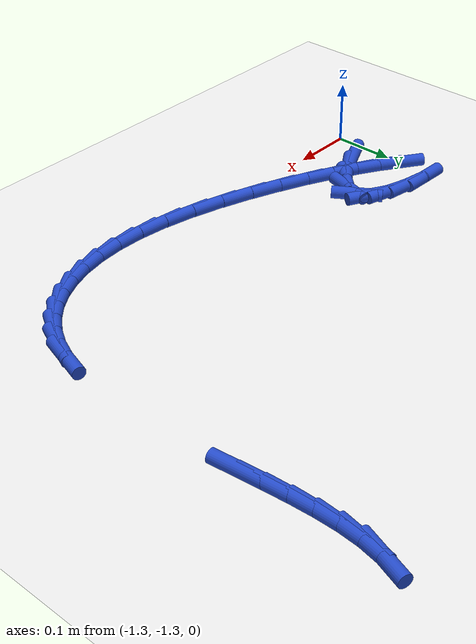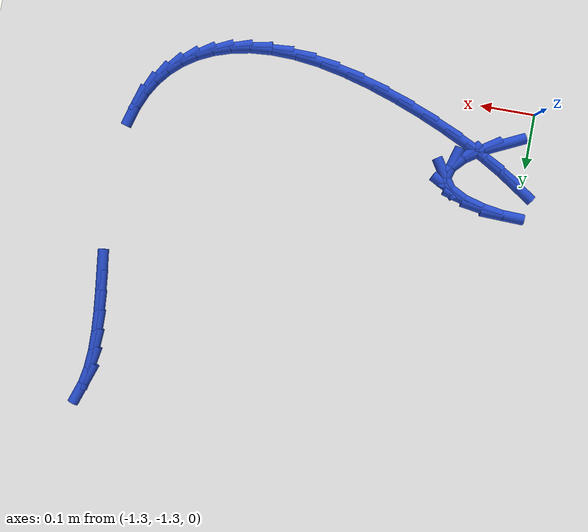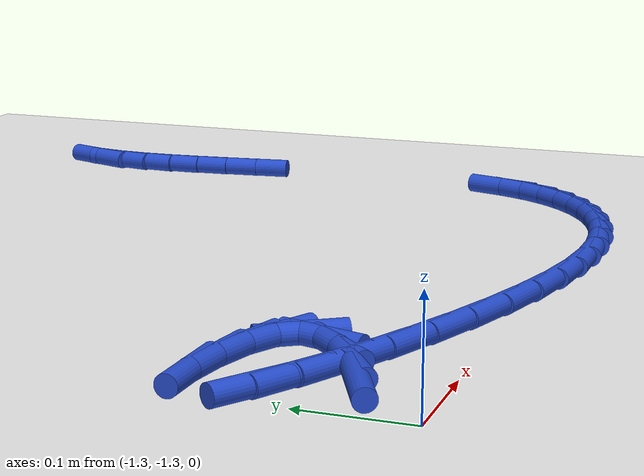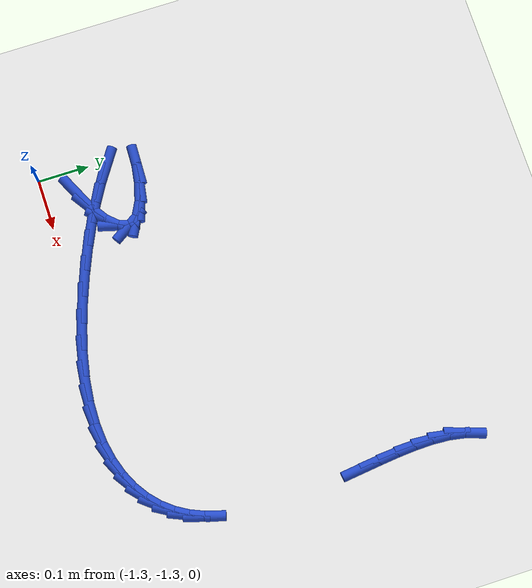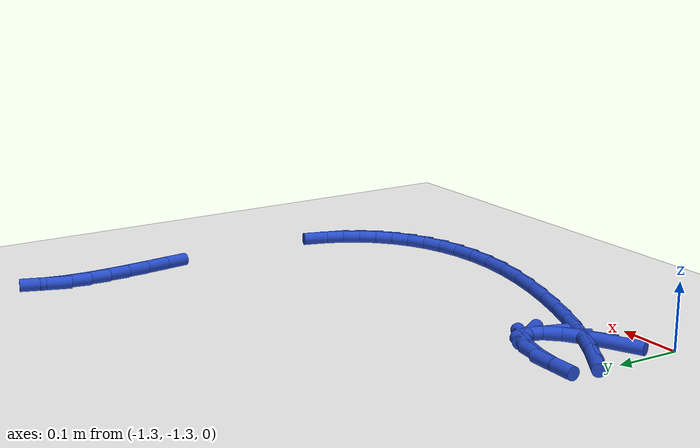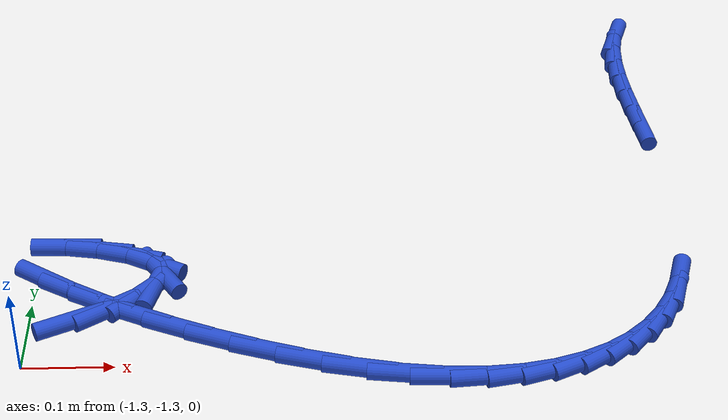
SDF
<sdf version="1.6">
 <world name="default">
  <model name="ground_plane">
   <static>1</static>
   <link name="link">
    <collision name="collision">
     <geometry><plane><normal>0 0 1</normal><size>100 100</size></plane></geometry>
     <surface><friction><ode><mu>100</mu><mu2>50</mu2></ode></friction></surface>
    </collision>
    <visual name="visual">
     <cast_shadows>0</cast_shadows>
     <geometry><plane><normal>0 0 1</normal><size>100 100</size></plane></geometry>
     <material>
      <script><uri>file://media/materials/scripts/gazebo.material</uri><name>Gazebo/WhiteGlow</name></script>
     </material>
    </visual>
   </link>
  </model>
  <model name="line">
   <link name="link_210">
    <pose>-1.2539724331653106 -1.2376059246218738 0.01 0 1.57 0.4432549823683181</pose>
    <collision name="collision">
     <geometry><cylinder><radius>0.01</radius><length>0.08</length></cylinder></geometry>
    </collision>
    <visual name="visual">
     <material>
      <script><name>Gazebo/Blue</name><uri>file://media/materials/scripts/gazebo.material</uri></script>
     </material>
     <geometry><cylinder><radius>0.01</radius><length>0.08</length></cylinder></geometry>
    </visual>
   </link>
   <link name="link_211">
    <pose>-1.2158057565205458 -1.2194857971073136 0.01 0 1.57 0.5884428363668545</pose>
    <collision name="collision">
     <geometry><cylinder><radius>0.01</radius><length>0.08</length></cylinder></geometry>
    </collision>
    <visual name="visual">
     <material>
      <script><name>Gazebo/Blue</name><uri>file://media/materials/scripts/gazebo.material</uri></script>
     </material>
     <geometry><cylinder><radius>0.01</radius><length>0.08</length></cylinder></geometry>
    </visual>
   </link>
   <link name="link_212">
    <pose>-1.1852793224526974 -1.1991154238514623 0.01 0 1.57 0.8190322249654465</pose>
    <collision name="collision">
     <geometry><cylinder><radius>0.01</radius><length>0.08</length></cylinder></geometry>
    </collision>
    <visual name="visual">
     <material>
      <script><name>Gazebo/Blue</name><uri>file://media/materials/scripts/gazebo.material</uri></script>
     </material>
     <geometry><cylinder><radius>0.01</radius><length>0.08</length></cylinder></geometry>
    </visual>
   </link>
   <link name="link_213">
    <pose>-1.1655960876808238 -1.1780615166413002 0.01 0 1.57 1.298280768819997</pose>
    <collision name="collision">
     <geometry><cylinder><radius>0.01</radius><length>0.08</length></cylinder></geometry>
    </collision>
    <visual name="visual">
     <material>
      <script><name>Gazebo/Blue</name><uri>file://media/materials/scripts/gazebo.material</uri></script>
     </material>
     <geometry><cylinder><radius>0.01</radius><length>0.08</length></cylinder></geometry>
    </visual>
   </link>
   <link name="link_214">
    <pose>-1.159959008923983 -1.157890787263808 0.01 0 1.57 -0.9957713988072188</pose>
    <collision name="collision">
     <geometry><cylinder><radius>0.01</radius><length>0.08</length></cylinder></geometry>
    </collision>
    <visual name="visual">
     <material>
      <script><name>Gazebo/Blue</name><uri>file://media/materials/scripts/gazebo.material</uri></script>
     </material>
     <geometry><cylinder><radius>0.01</radius><length>0.08</length></cylinder></geometry>
    </visual>
   </link>
   <link name="link_215">
    <pose>-1.1714517007224812 -1.1401573654941055 0.01 0 1.57 -0.48142007382687024</pose>
    <collision name="collision">
     <geometry><cylinder><radius>0.01</radius><length>0.08</length></cylinder></geometry>
    </collision>
    <visual name="visual">
     <material>
      <script><name>Gazebo/Blue</name><uri>file://media/materials/scripts/gazebo.material</uri></script>
     </material>
     <geometry><cylinder><radius>0.01</radius><length>0.08</length></cylinder></geometry>
    </visual>
   </link>
   <link name="link_216">
    <pose>-1.1986633355736054 -1.1259415408969013 0.01 0 1.57 -0.27846862058242877</pose>
    <collision name="collision">
     <geometry><cylinder><radius>0.01</radius><length>0.08</length></cylinder></geometry>
    </collision>
    <visual name="visual">
     <material>
      <script><name>Gazebo/Blue</name><uri>file://media/materials/scripts/gazebo.material</uri></script>
     </material>
     <geometry><cylinder><radius>0.01</radius><length>0.08</length></cylinder></geometry>
    </visual>
   </link>
   <link name="link_217">
    <pose>-1.2344271650765353 -1.1157167675847222 0.01 0 1.57 -0.1564355320181092</pose>
    <collision name="collision">
     <geometry><cylinder><radius>0.01</radius><length>0.08</length></cylinder></geometry>
    </collision>
    <visual name="visual">
     <material>
      <script><name>Gazebo/Blue</name><uri>file://media/materials/scripts/gazebo.material</uri></script>
     </material>
     <geometry><cylinder><radius>0.01</radius><length>0.08</length></cylinder></geometry>
    </visual>
   </link>
   <link name="link_218">
    <pose>-1.27119995269671 -1.109916807264496 0.01 0 1.57 -0.03113279723615601</pose>
    <collision name="collision">
     <geometry><cylinder><radius>0.01</radius><length>0.08</length></cylinder></geometry>
    </collision>
    <visual name="visual">
     <material>
      <script><name>Gazebo/Blue</name><uri>file://media/materials/scripts/gazebo.material</uri></script>
     </material>
     <geometry><cylinder><radius>0.01</radius><length>0.08</length></cylinder></geometry>
    </visual>
   </link>
   <link name="link_224">
    <pose>-1.2860656298503885 -1.1672841073187246 0.01 0 1.57 -0.5885943882413814</pose>
    <collision name="collision">
     <geometry><cylinder><radius>0.01</radius><length>0.08</length></cylinder></geometry>
    </collision>
    <visual name="visual">
     <material>
      <script><name>Gazebo/Blue</name><uri>file://media/materials/scripts/gazebo.material</uri></script>
     </material>
     <geometry><cylinder><radius>0.01</radius><length>0.08</length></cylinder></geometry>
    </visual>
   </link>
   <link name="link_225">
    <pose>-1.2566376610378893 -1.186927918155896 0.01 0 1.57 -0.5274600449793352</pose>
    <collision name="collision">
     <geometry><cylinder><radius>0.01</radius><length>0.08</length></cylinder></geometry>
    </collision>
    <visual name="visual">
     <material>
      <script><name>Gazebo/Blue</name><uri>file://media/materials/scripts/gazebo.material</uri></script>
     </material>
     <geometry><cylinder><radius>0.01</radius><length>0.08</length></cylinder></geometry>
    </visual>
   </link>
   <link name="link_226">
    <pose>-1.2210611946322114 -1.2076515711863474 0.01 0 1.57 -0.47983751183656775</pose>
    <collision name="collision">
     <geometry><cylinder><radius>0.01</radius><length>0.08</length></cylinder></geometry>
    </collision>
    <visual name="visual">
     <material>
      <script><name>Gazebo/Blue</name><uri>file://media/materials/scripts/gazebo.material</uri></script>
     </material>
     <geometry><cylinder><radius>0.01</radius><length>0.08</length></cylinder></geometry>
    </visual>
   </link>
   <link name="link_227">
    <pose>-1.1804658353754063 -1.2287775720599337 0.01 0 1.57 -0.43831215655637973</pose>
    <collision name="collision">
     <geometry><cylinder><radius>0.01</radius><length>0.08</length></cylinder></geometry>
    </collision>
    <visual name="visual">
     <material>
      <script><name>Gazebo/Blue</name><uri>file://media/materials/scripts/gazebo.material</uri></script>
     </material>
     <geometry><cylinder><radius>0.01</radius><length>0.08</length></cylinder></geometry>
    </visual>
   </link>
   <link name="link_228">
    <pose>-1.1359811880095243 -1.2496284264265094 0.01 0 1.57 -0.3986278656743505</pose>
    <collision name="collision">
     <geometry><cylinder><radius>0.01</radius><length>0.08</length></cylinder></geometry>
    </collision>
    <visual name="visual">
     <material>
      <script><name>Gazebo/Blue</name><uri>file://media/materials/scripts/gazebo.material</uri></script>
     </material>
     <geometry><cylinder><radius>0.01</radius><length>0.08</length></cylinder></geometry>
    </visual>
   </link>
   <link name="link_229">
    <pose>-1.0887368572766158 -1.2695266399359293 0.01 0 1.57 -0.3576970901918029</pose>
    <collision name="collision">
     <geometry><cylinder><radius>0.01</radius><length>0.08</length></cylinder></geometry>
    </collision>
    <visual name="visual">
     <material>
      <script><name>Gazebo/Blue</name><uri>file://media/materials/scripts/gazebo.material</uri></script>
     </material>
     <geometry><cylinder><radius>0.01</radius><length>0.08</length></cylinder></geometry>
    </visual>
   </link>
   <link name="link_230">
    <pose>-1.0398624479187335 -1.2877947182380491 0.01 0 1.57 -0.312648595863164</pose>
    <collision name="collision">
     <geometry><cylinder><radius>0.01</radius><length>0.08</length></cylinder></geometry>
    </collision>
    <visual name="visual">
     <material>
      <script><name>Gazebo/Blue</name><uri>file://media/materials/scripts/gazebo.material</uri></script>
     </material>
     <geometry><cylinder><radius>0.01</radius><length>0.08</length></cylinder></geometry>
    </visual>
   </link>
   <link name="link_231">
    <pose>-0.9904875646779274 -1.303755166982723 0.01 0 1.57 -0.2601514371500796</pose>
    <collision name="collision">
     <geometry><cylinder><radius>0.01</radius><length>0.08</length></cylinder></geometry>
    </collision>
    <visual name="visual">
     <material>
      <script><name>Gazebo/Blue</name><uri>file://media/materials/scripts/gazebo.material</uri></script>
     </material>
     <geometry><cylinder><radius>0.01</radius><length>0.08</length></cylinder></geometry>
    </visual>
   </link>
   <link name="link_232">
    <pose>-0.9417418122962483 -1.316730491819805 0.01 0 1.57 -0.19566173266323983</pose>
    <collision name="collision">
     <geometry><cylinder><radius>0.01</radius><length>0.08</length></cylinder></geometry>
    </collision>
    <visual name="visual">
     <material>
      <script><name>Gazebo/Blue</name><uri>file://media/materials/scripts/gazebo.material</uri></script>
     </material>
     <geometry><cylinder><radius>0.01</radius><length>0.08</length></cylinder></geometry>
    </visual>
   </link>
   <link name="link_233">
    <pose>-0.8947547955157491 -1.3260431983991514 0.01 0 1.57 -0.11438777732567636</pose>
    <collision name="collision">
     <geometry><cylinder><radius>0.01</radius><length>0.08</length></cylinder></geometry>
    </collision>
    <visual name="visual">
     <material>
      <script><name>Gazebo/Blue</name><uri>file://media/materials/scripts/gazebo.material</uri></script>
     </material>
     <geometry><cylinder><radius>0.01</radius><length>0.08</length></cylinder></geometry>
    </visual>
   </link>
   <link name="link_234">
    <pose>-0.8505268887294823 -1.3311245119653983 0.01 0 1.57 -0.02123904151532069</pose>
    <collision name="collision">
     <geometry><cylinder><radius>0.01</radius><length>0.08</length></cylinder></geometry>
    </collision>
    <visual name="visual">
     <material>
      <script><name>Gazebo/Blue</name><uri>file://media/materials/scripts/gazebo.material</uri></script>
     </material>
     <geometry><cylinder><radius>0.01</radius><length>0.08</length></cylinder></geometry>
    </visual>
   </link>
   <link name="link_235">
    <pose>-0.8093530229400092 -1.3319991369277342 0.01 0 1.57 0.0814144187021556</pose>
    <collision name="collision">
     <geometry><cylinder><radius>0.01</radius><length>0.08</length></cylinder></geometry>
    </collision>
    <visual name="visual">
     <material>
      <script><name>Gazebo/Blue</name><uri>file://media/materials/scripts/gazebo.material</uri></script>
     </material>
     <geometry><cylinder><radius>0.01</radius><length>0.08</length></cylinder></geometry>
    </visual>
   </link>
   <link name="link_236">
    <pose>-0.7712886121566715 -1.3288932798242858 0.01 0 1.57 0.19408777391674292</pose>
    <collision name="collision">
     <geometry><cylinder><radius>0.01</radius><length>0.08</length></cylinder></geometry>
    </collision>
    <visual name="visual">
     <material>
      <script><name>Gazebo/Blue</name><uri>file://media/materials/scripts/gazebo.material</uri></script>
     </material>
     <geometry><cylinder><radius>0.01</radius><length>0.08</length></cylinder></geometry>
    </visual>
   </link>
   <link name="link_237">
    <pose>-0.736388874633568 -1.322033311879192 0.01 0 1.57 0.31684936229441985</pose>
    <collision name="collision">
     <geometry><cylinder><radius>0.01</radius><length>0.08</length></cylinder></geometry>
    </collision>
    <visual name="visual">
     <material>
      <script><name>Gazebo/Blue</name><uri>file://media/materials/scripts/gazebo.material</uri></script>
     </material>
     <geometry><cylinder><radius>0.01</radius><length>0.08</length></cylinder></geometry>
    </visual>
   </link>
   <link name="link_238">
    <pose>-0.7047090286247965 -1.3116456043165907 0.01 0 1.57 0.4490868584668187</pose>
    <collision name="collision">
     <geometry><cylinder><radius>0.01</radius><length>0.08</length></cylinder></geometry>
    </collision>
    <visual name="visual">
     <material>
      <script><name>Gazebo/Blue</name><uri>file://media/materials/scripts/gazebo.material</uri></script>
     </material>
     <geometry><cylinder><radius>0.01</radius><length>0.08</length></cylinder></geometry>
    </visual>
   </link>
   <link name="link_239">
    <pose>-0.6763042923844564 -1.2979565283606214 0.01 0 1.57 0.5893212338845596</pose>
    <collision name="collision">
     <geometry><cylinder><radius>0.01</radius><length>0.08</length></cylinder></geometry>
    </collision>
    <visual name="visual">
     <material>
      <script><name>Gazebo/Blue</name><uri>file://media/materials/scripts/gazebo.material</uri></script>
     </material>
     <geometry><cylinder><radius>0.01</radius><length>0.08</length></cylinder></geometry>
    </visual>
   </link>
   <link name="link_240">
    <pose>-0.6512298841666454 -1.281192455235421 0.01 0 1.57 0.7351720531187117</pose>
    <collision name="collision">
     <geometry><cylinder><radius>0.01</radius><length>0.08</length></cylinder></geometry>
    </collision>
    <visual name="visual">
     <material>
      <script><name>Gazebo/Blue</name><uri>file://media/materials/scripts/gazebo.material</uri></script>
     </material>
     <geometry><cylinder><radius>0.01</radius><length>0.08</length></cylinder></geometry>
    </visual>
   </link>
   <link name="link_241">
    <pose>-0.629541022225463 -1.2615797561651294 0.01 0 1.57 0.8835637316790298</pose>
    <collision name="collision">
     <geometry><cylinder><radius>0.01</radius><length>0.08</length></cylinder></geometry>
    </collision>
    <visual name="visual">
     <material>
      <script><name>Gazebo/Blue</name><uri>file://media/materials/scripts/gazebo.material</uri></script>
     </material>
     <geometry><cylinder><radius>0.01</radius><length>0.08</length></cylinder></geometry>
    </visual>
   </link>
   <link name="link_242">
    <pose>-0.6112929248150072 -1.2393448023738838 0.01 0 1.57 1.0305753853104271</pose>
    <collision name="collision">
     <geometry><cylinder><radius>0.01</radius><length>0.08</length></cylinder></geometry>
    </collision>
    <visual name="visual">
     <material>
      <script><name>Gazebo/Blue</name><uri>file://media/materials/scripts/gazebo.material</uri></script>
     </material>
     <geometry><cylinder><radius>0.01</radius><length>0.08</length></cylinder></geometry>
    </visual>
   </link>
   <link name="link_243">
    <pose>-0.5965205906179604 -1.2147131608205024 0.01 0 1.57 1.1663881094633433</pose>
    <collision name="collision">
     <geometry><cylinder><radius>0.01</radius><length>0.08</length></cylinder></geometry>
    </collision>
    <visual name="visual">
     <material>
      <script><name>Gazebo/Blue</name><uri>file://media/materials/scripts/gazebo.material</uri></script>
     </material>
     <geometry><cylinder><radius>0.01</radius><length>0.08</length></cylinder></geometry>
    </visual>
   </link>
   <link name="link_244">
    <pose>-0.5850453940476569 -1.187901901221797 0.01 0 1.57 1.284086696678844</pose>
    <collision name="collision">
     <geometry><cylinder><radius>0.01</radius><length>0.08</length></cylinder></geometry>
    </collision>
    <visual name="visual">
     <material>
      <script><name>Gazebo/Blue</name><uri>file://media/materials/scripts/gazebo.material</uri></script>
     </material>
     <geometry><cylinder><radius>0.01</radius><length>0.08</length></cylinder></geometry>
    </visual>
   </link>
   <link name="link_253">
    <pose>-0.5792808171980895 -0.8834903925740759 0.01 0 1.57 -1.4534445244349177</pose>
    <collision name="collision">
     <geometry><cylinder><radius>0.01</radius><length>0.08</length></cylinder></geometry>
    </collision>
    <visual name="visual">
     <material>
      <script><name>Gazebo/Blue</name><uri>file://media/materials/scripts/gazebo.material</uri></script>
     </material>
     <geometry><cylinder><radius>0.01</radius><length>0.08</length></cylinder></geometry>
    </visual>
   </link>
   <link name="link_254">
    <pose>-0.5836204943671824 -0.8466802408816542 0.01 0 1.57 -1.46859629763587</pose>
    <collision name="collision">
     <geometry><cylinder><radius>0.01</radius><length>0.08</length></cylinder></geometry>
    </collision>
    <visual name="visual">
     <material>
      <script><name>Gazebo/Blue</name><uri>file://media/materials/scripts/gazebo.material</uri></script>
     </material>
     <geometry><cylinder><radius>0.01</radius><length>0.08</length></cylinder></geometry>
    </visual>
   </link>
   <link name="link_255">
    <pose>-0.5873416046877292 -0.8103970240745612 0.01 0 1.57 -1.5013620985028795</pose>
    <collision name="collision">
     <geometry><cylinder><radius>0.01</radius><length>0.08</length></cylinder></geometry>
    </collision>
    <visual name="visual">
     <material>
      <script><name>Gazebo/Blue</name><uri>file://media/materials/scripts/gazebo.material</uri></script>
     </material>
     <geometry><cylinder><radius>0.01</radius><length>0.08</length></cylinder></geometry>
    </visual>
   </link>
   <link name="link_256">
    <pose>-0.5897966243646756 -0.7750963782651037 0.01 0 1.57 -1.5548093177850681</pose>
    <collision name="collision">
     <geometry><cylinder><radius>0.01</radius><length>0.08</length></cylinder></geometry>
    </collision>
    <visual name="visual">
     <material>
      <script><name>Gazebo/Blue</name><uri>file://media/materials/scripts/gazebo.material</uri></script>
     </material>
     <geometry><cylinder><radius>0.01</radius><length>0.08</length></cylinder></geometry>
    </visual>
   </link>
   <link name="link_257">
    <pose>-0.5903380296029668 -0.7412339395655879 0.01 0 1.57 1.50770152706468</pose>
    <collision name="collision">
     <geometry><cylinder><radius>0.01</radius><length>0.08</length></cylinder></geometry>
    </collision>
    <visual name="visual">
     <material>
      <script><name>Gazebo/Blue</name><uri>file://media/materials/scripts/gazebo.material</uri></script>
     </material>
     <geometry><cylinder><radius>0.01</radius><length>0.08</length></cylinder></geometry>
    </visual>
   </link>
   <link name="link_258">
    <pose>-0.5883182966075483 -0.7092653440883199 0.01 0 1.57 1.396075270917271</pose>
    <collision name="collision">
     <geometry><cylinder><radius>0.01</radius><length>0.08</length></cylinder></geometry>
    </collision>
    <visual name="visual">
     <material>
      <script><name>Gazebo/Blue</name><uri>file://media/materials/scripts/gazebo.material</uri></script>
     </material>
     <geometry><cylinder><radius>0.01</radius><length>0.08</length></cylinder></geometry>
    </visual>
   </link>
   <link name="link_259">
    <pose>-0.5830899015833654 -0.6796462279456055 0.01 0 1.57 1.2441339540608634</pose>
    <collision name="collision">
     <geometry><cylinder><radius>0.01</radius><length>0.08</length></cylinder></geometry>
    </collision>
    <visual name="visual">
     <material>
      <script><name>Gazebo/Blue</name><uri>file://media/materials/scripts/gazebo.material</uri></script>
     </material>
     <geometry><cylinder><radius>0.01</radius><length>0.08</length></cylinder></geometry>
    </visual>
   </link>
  </model>
 </world>
</sdf>
